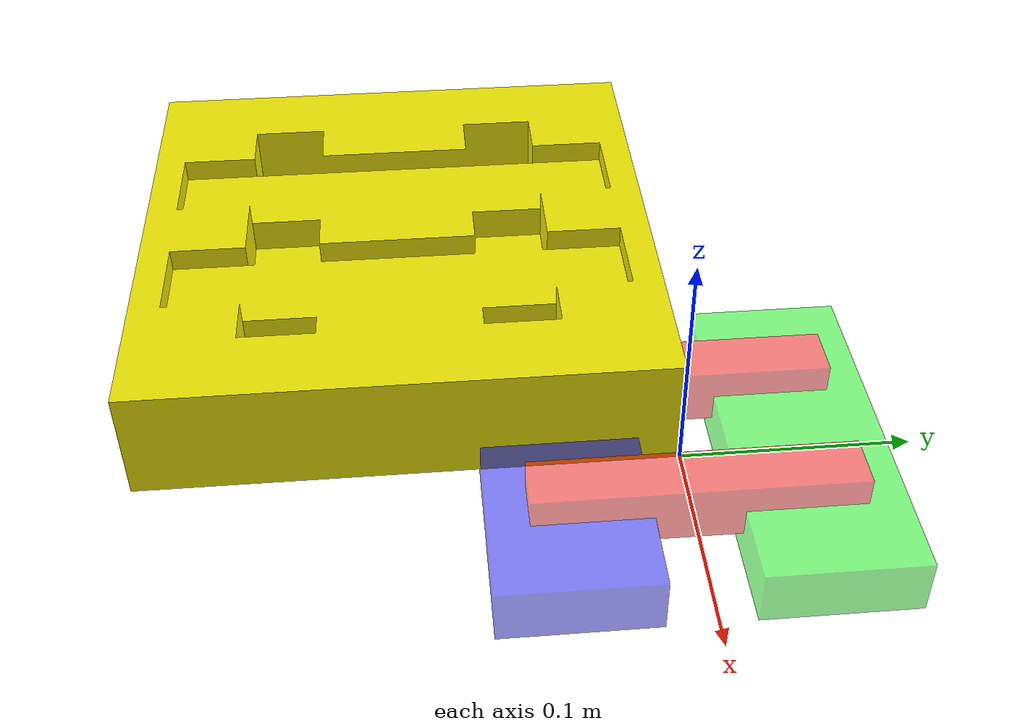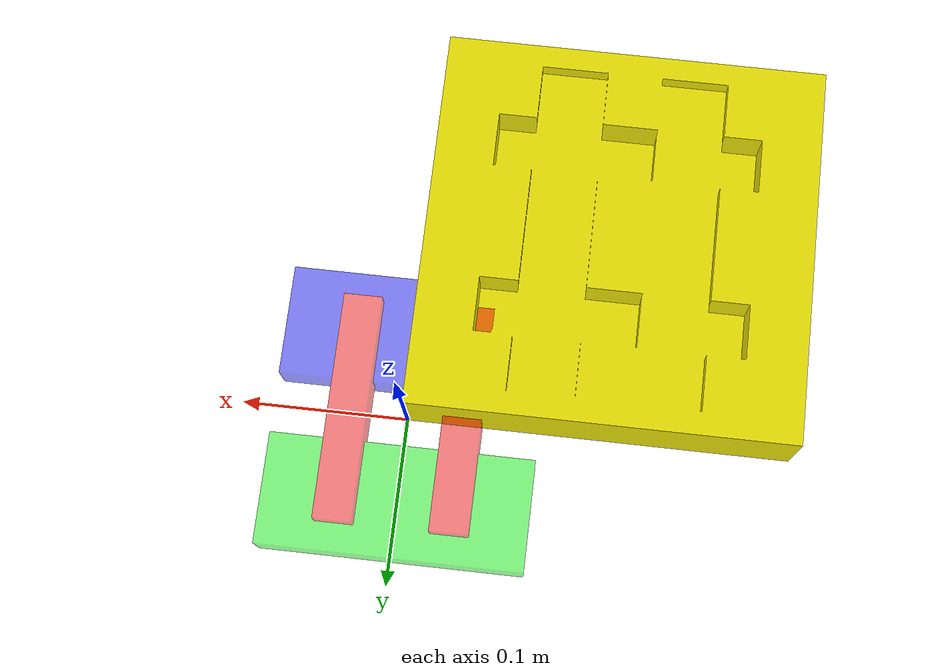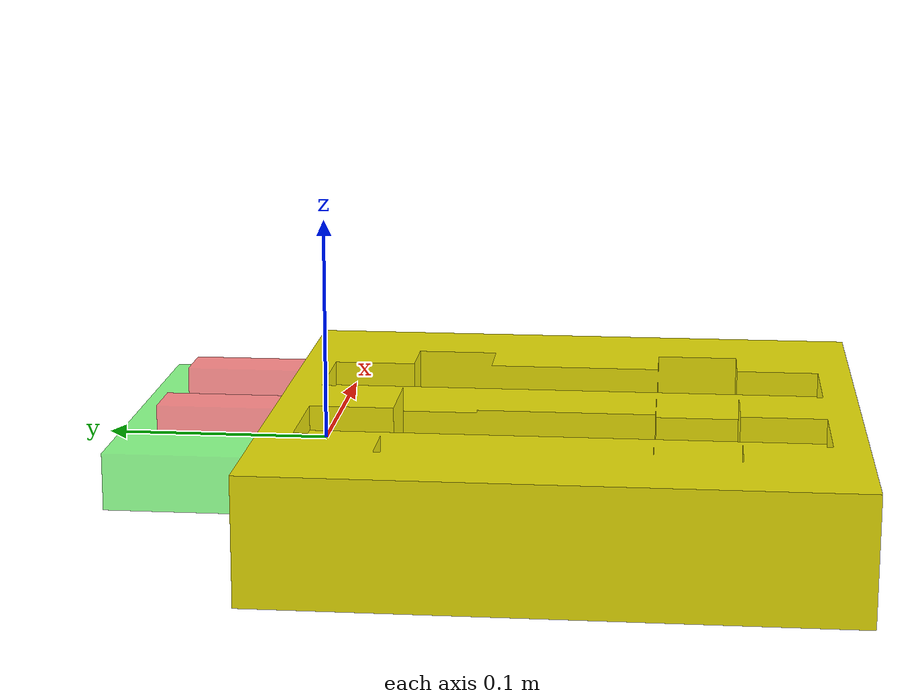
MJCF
<?xml version='1.0' encoding='utf-8'?>
<mujoco model="obj1">
  <asset>
    <mesh name="obj1" file="obj1.obj" scale="0.001 0.001 0.001" />
    <material name="mat1" rgba="0.93725 0.90588 0.02745 1" />
  </asset>
  <worldbody>
    <body>
      <body name="object">
        <geom name="visual" mesh="obj1" type="mesh" group="1" contype="0" conaffinity="0" material="mat1" />
        <geom name="collision" mesh="obj1" type="mesh" group="0" density="50" friction="0.95 0.3 0.1" solimp="0.998 0.998 0.001" solref="0.001 1" condim="4" />

        <site name="bottom_site" pos="0 0 -0.025" size="0.005" rgba="0 0 0 0" />
        <site name="top_site" pos="0 0 0.025" size="0.005" rgba="0 0 0 0" />
        <site name="horizontal_radius_site" pos="0.03 0.03 0" size="0.005" rgba="0 0 0 0" />

        <!-- ================= Board 3 Frame Holes ================= -->
        <site name="hole_slot_left_site" pos="0.034 0 0.0125" size="0.0115 0.068 0.0125" rgba="1 0 0 0.5" type="box" />
        <site name="hole_slot_right_site" pos="-0.034 0 0.0125" size="0.0115 0.068 0.0125" rgba="1 0 0 0.5" type="box" />
        <site name="hole_trident_front_site" pos="0 0.0515 0" size="0.0795 0.03325 0.0125" rgba="0 1 0 0.5" type="box" />
        <site name="hole_trident_back_site" pos="0 -0.0515 0" size="0.0795 0.03325 0.0125" rgba="0 0 1 0.5" type="box" />
      </body>
    </body>
  </worldbody>
</mujoco>
